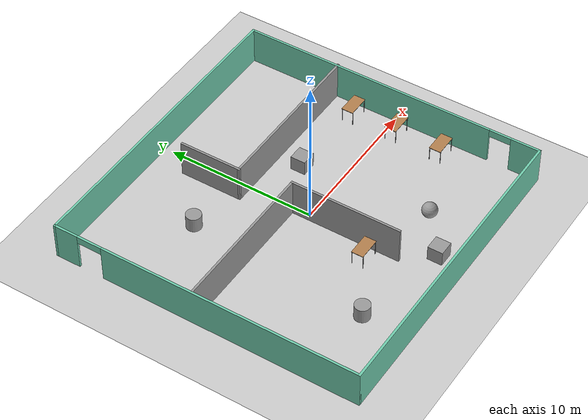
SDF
<sdf version="1.7">
 <world name="default">
  <light name="sun" type="directional">
   <pose>0 0 10 0 -0 0</pose>
   <diffuse>0.8 0.8 0.8 1</diffuse>
   <specular>0.2 0.2 0.2 1</specular>
   <attenuation>
    <range>1000</range>
    <constant>0.9</constant>
    <linear>0.01</linear>
    <quadratic>0.001</quadratic>
   </attenuation>
   <direction>-0.5 0.1 -0.9</direction>
   <spot><inner_angle>0</inner_angle><outer_angle>0</outer_angle><falloff>0</falloff></spot>
  </light>
  <model name="ground_plane">
   <static>1</static>
   <link name="link">
    <collision name="collision">
     <geometry><plane><normal>0 0 1</normal><size>100 100</size></plane></geometry>
     <surface>
      <contact><collide_bitmask>65535</collide_bitmask></contact>
      <friction><ode><mu>100</mu><mu2>50</mu2></ode></friction>
     </surface>
    </collision>
    <visual name="visual">
     <cast_shadows>0</cast_shadows>
     <geometry><plane><normal>0 0 1</normal><size>100 100</size></plane></geometry>
     <material>
      <script><uri>file://media/materials/scripts/gazebo.material</uri><name>Gazebo/Grey</name></script>
     </material>
    </visual>
   </link>
  </model>
  <gravity>0 0 -9.8</gravity>
  <magnetic_field>6e-06 2.3e-05 -4.2e-05</magnetic_field>
  <atmosphere type="adiabatic"/>
  <physics name="default_physics" default="0" type="ode">
   <max_step_size>0.001</max_step_size>
   <real_time_factor>1</real_time_factor>
   <real_time_update_rate>1000</real_time_update_rate>
  </physics>
  <scene><ambient>0.4 0.4 0.4 1</ambient><background>0.7 0.7 0.7 1</background><shadows>1</shadows></scene>
  <spherical_coordinates>
   <surface_model>EARTH_WGS84</surface_model>
   <latitude_deg>0</latitude_deg>
   <longitude_deg>0</longitude_deg>
   <elevation>0</elevation>
   <heading_deg>0</heading_deg>
  </spherical_coordinates>
  <model name="arche">
   <pose>-0.34998 0.3217 0 0 -0 0</pose>
   <link name="Wall_10">
    <collision name="Wall_10_Collision">
     <geometry><box><size>20.75 0.15 2.5</size></box></geometry>
     <pose>0 0 1.25 0 -0 0</pose>
    </collision>
    <visual name="Wall_10_Visual">
     <pose>0 0 1.25 0 -0 0</pose>
     <geometry><box><size>20.75 0.15 2.5</size></box></geometry>
     <material>
      <script><uri>file://media/materials/scripts/gazebo.material</uri><name>Gazebo/Grey</name></script>
      <ambient>0.435294 0.796078 0.67451 1</ambient>
     </material>
     <meta><layer>0</layer></meta>
    </visual>
    <pose>-0.031433 10.3 0 0 -0 3.14159</pose>
   </link>
   <link name="Wall_12">
    <collision name="Wall_12_Collision">
     <geometry><box><size>10.5 0.15 2.5</size></box></geometry>
     <pose>0 0 1.25 0 -0 0</pose>
    </collision>
    <visual name="Wall_12_Visual">
     <pose>0 0 1.25 0 -0 0</pose>
     <geometry><box><size>10.5 0.15 2.5</size></box></geometry>
     <material>
      <script><uri>file://media/materials/scripts/gazebo.material</uri><name>Gazebo/Grey</name></script>
      <ambient>1 1 1 1</ambient>
     </material>
     <meta><layer>0</layer></meta>
    </visual>
    <pose>-5.15018 0.721663 0 0 -0 0</pose>
   </link>
   <link name="Wall_13">
    <collision name="Wall_13_Collision">
     <geometry><box><size>7.5 0.15 2.5</size></box></geometry>
     <pose>0 0 1.25 0 -0 0</pose>
    </collision>
    <visual name="Wall_13_Visual">
     <pose>0 0 1.25 0 -0 0</pose>
     <geometry><box><size>7.5 0.15 2.5</size></box></geometry>
     <material>
      <script><uri>file://media/materials/scripts/gazebo.material</uri><name>Gazebo/Grey</name></script>
      <ambient>1 1 1 1</ambient>
     </material>
     <meta><layer>0</layer></meta>
    </visual>
    <pose>0.024817 -2.95334 0 0 -0 -1.5708</pose>
   </link>
   <link name="Wall_15">
    <collision name="Wall_15_Collision">
     <geometry><box><size>11.25 0.15 2.5</size></box></geometry>
     <pose>0 0 1.25 0 -0 0</pose>
    </collision>
    <visual name="Wall_15_Visual">
     <pose>0 0 1.25 0 -0 0</pose>
     <geometry><box><size>11.25 0.15 2.5</size></box></geometry>
     <material>
      <script><uri>file://media/materials/scripts/gazebo.material</uri><name>Gazebo/Grey</name></script>
      <ambient>1 1 1 1</ambient>
     </material>
     <meta><layer>0</layer></meta>
    </visual>
    <pose>4.78144 3.97834 0 0 -0 3.14159</pose>
   </link>
   <link name="Wall_16">
    <collision name="Wall_16_Collision">
     <geometry><box><size>4.25 0.15 2.5</size></box></geometry>
     <pose>0 0 1.25 0 -0 0</pose>
    </collision>
    <visual name="Wall_16_Visual">
     <pose>0 0 1.25 0 -0 0</pose>
     <geometry><box><size>4.25 0.15 2.5</size></box></geometry>
     <material>
      <script><uri>file://media/materials/scripts/gazebo.material</uri><name>Gazebo/Grey</name></script>
      <ambient>1 1 1 1</ambient>
     </material>
     <meta><layer>0</layer></meta>
    </visual>
    <pose>-0.768565 6.02834 0 0 -0 1.5708</pose>
   </link>
   <link name="Wall_7">
    <pose>-10.3314 0 0 0 -0 -1.5708</pose>
    <visual name="Wall_7_Visual_0">
     <pose>-9.52533 0 1.25 0 -0 0</pose>
     <geometry><box><size>1.69935 0.15 2.5</size></box></geometry>
     <material>
      <script><uri>file://media/materials/scripts/gazebo.material</uri><name>Gazebo/Grey</name></script>
      <ambient>0.435294 0.796078 0.67451 1</ambient>
     </material>
     <meta><layer>0</layer></meta>
    </visual>
    <collision name="Wall_7_Collision_0">
     <geometry><box><size>1.69935 0.15 2.5</size></box></geometry>
     <pose>-9.52533 0 1.25 0 -0 0</pose>
    </collision>
    <visual name="Wall_7_Visual_1">
     <pose>1.6932 0 1.25 0 -0 0</pose>
     <geometry><box><size>17.3636 0.15 2.5</size></box></geometry>
     <material>
      <script><uri>file://media/materials/scripts/gazebo.material</uri><name>Gazebo/Grey</name></script>
      <ambient>0.435294 0.796078 0.67451 1</ambient>
     </material>
     <meta><layer>0</layer></meta>
    </visual>
    <collision name="Wall_7_Collision_1">
     <geometry><box><size>17.3636 0.15 2.5</size></box></geometry>
     <pose>1.6932 0 1.25 0 -0 0</pose>
    </collision>
    <visual name="Wall_7_Visual_2">
     <pose>-7.83212 0 2.25 0 -0 0</pose>
     <geometry><box><size>1.68705 0.15 0.5</size></box></geometry>
     <material>
      <script><uri>file://media/materials/scripts/gazebo.material</uri><name>Gazebo/Grey</name></script>
      <ambient>0.435294 0.796078 0.67451 1</ambient>
     </material>
     <meta><layer>0</layer></meta>
    </visual>
    <collision name="Wall_7_Collision_2">
     <geometry><box><size>1.68705 0.15 0.5</size></box></geometry>
     <pose>-7.83212 0 2.25 0 -0 0</pose>
    </collision>
   </link>
   <link name="Wall_8">
    <collision name="Wall_8_Collision">
     <geometry><box><size>20.75 0.15 2.5</size></box></geometry>
     <pose>0 0 1.25 0 -0 0</pose>
    </collision>
    <visual name="Wall_8_Visual">
     <pose>0 0 1.25 0 -0 0</pose>
     <geometry><box><size>20.75 0.15 2.5</size></box></geometry>
     <material>
      <script><uri>file://media/materials/scripts/gazebo.material</uri><name>Gazebo/Grey</name></script>
      <ambient>0.435294 0.796078 0.67451 1</ambient>
     </material>
     <meta><layer>0</layer></meta>
    </visual>
    <pose>-0.031433 -10.3 0 0 -0 0</pose>
   </link>
   <link name="Wall_9">
    <pose>10.2686 0 0 0 -0 1.5708</pose>
    <visual name="Wall_9_Visual_0">
     <pose>-9.37108 0 1.25 0 -0 0</pose>
     <geometry><box><size>2.00783 0.15 2.5</size></box></geometry>
     <material>
      <script><uri>file://media/materials/scripts/gazebo.material</uri><name>Gazebo/Grey</name></script>
      <ambient>0.435294 0.796078 0.67451 1</ambient>
     </material>
     <meta><layer>0</layer></meta>
    </visual>
    <collision name="Wall_9_Collision_0">
     <geometry><box><size>2.00783 0.15 2.5</size></box></geometry>
     <pose>-9.37108 0 1.25 0 -0 0</pose>
    </collision>
    <visual name="Wall_9_Visual_1">
     <pose>1.7425 0 1.25 0 -0 0</pose>
     <geometry><box><size>17.265 0.15 2.5</size></box></geometry>
     <material>
      <script><uri>file://media/materials/scripts/gazebo.material</uri><name>Gazebo/Grey</name></script>
      <ambient>0.435294 0.796078 0.67451 1</ambient>
     </material>
     <meta><layer>0</layer></meta>
    </visual>
    <collision name="Wall_9_Collision_1">
     <geometry><box><size>17.265 0.15 2.5</size></box></geometry>
     <pose>1.7425 0 1.25 0 -0 0</pose>
    </collision>
    <visual name="Wall_9_Visual_2">
     <pose>-7.62858 0 2.25 0 -0 0</pose>
     <geometry><box><size>1.47717 0.15 0.5</size></box></geometry>
     <material>
      <script><uri>file://media/materials/scripts/gazebo.material</uri><name>Gazebo/Grey</name></script>
      <ambient>0.435294 0.796078 0.67451 1</ambient>
     </material>
     <meta><layer>0</layer></meta>
    </visual>
    <collision name="Wall_9_Collision_2">
     <geometry><box><size>1.47717 0.15 0.5</size></box></geometry>
     <pose>-7.62858 0 2.25 0 -0 0</pose>
    </collision>
   </link>
   <static>1</static>
  </model>
  <model name="table">
   <static>1</static>
   <link name="link">
    <collision name="surface">
     <pose>0 0 1 0 -0 0</pose>
     <geometry><box><size>1.5 0.8 0.03</size></box></geometry>
     <surface><friction><ode><mu>0.6</mu><mu2>0.6</mu2></ode></friction></surface>
    </collision>
    <visual name="visual1">
     <pose>0 0 1 0 -0 0</pose>
     <geometry><box><size>1.5 0.8 0.03</size></box></geometry>
     <material>
      <script><uri>file://media/materials/scripts/gazebo.material</uri><name>Gazebo/Wood</name></script>
     </material>
    </visual>
    <collision name="front_left_leg">
     <pose>0.68 0.38 0.5 0 -0 0</pose>
     <geometry><cylinder><radius>0.02</radius><length>1</length></cylinder></geometry>
    </collision>
    <visual name="front_left_leg">
     <pose>0.68 0.38 0.5 0 -0 0</pose>
     <geometry><cylinder><radius>0.02</radius><length>1</length></cylinder></geometry>
     <material>
      <script><uri>file://media/materials/scripts/gazebo.material</uri><name>Gazebo/Grey</name></script>
     </material>
    </visual>
    <collision name="front_right_leg">
     <pose>0.68 -0.38 0.5 0 -0 0</pose>
     <geometry><cylinder><radius>0.02</radius><length>1</length></cylinder></geometry>
    </collision>
    <visual name="front_right_leg">
     <pose>0.68 -0.38 0.5 0 -0 0</pose>
     <geometry><cylinder><radius>0.02</radius><length>1</length></cylinder></geometry>
     <material>
      <script><uri>file://media/materials/scripts/gazebo.material</uri><name>Gazebo/Grey</name></script>
     </material>
    </visual>
    <collision name="back_right_leg">
     <pose>-0.68 -0.38 0.5 0 -0 0</pose>
     <geometry><cylinder><radius>0.02</radius><length>1</length></cylinder></geometry>
    </collision>
    <visual name="back_right_leg">
     <pose>-0.68 -0.38 0.5 0 -0 0</pose>
     <geometry><cylinder><radius>0.02</radius><length>1</length></cylinder></geometry>
     <material>
      <script><uri>file://media/materials/scripts/gazebo.material</uri><name>Gazebo/Grey</name></script>
     </material>
    </visual>
    <collision name="back_left_leg">
     <pose>-0.68 0.38 0.5 0 -0 0</pose>
     <geometry><cylinder><radius>0.02</radius><length>1</length></cylinder></geometry>
    </collision>
    <visual name="back_left_leg">
     <pose>-0.68 0.38 0.5 0 -0 0</pose>
     <geometry><cylinder><radius>0.02</radius><length>1</length></cylinder></geometry>
     <material>
      <script><uri>file://media/materials/scripts/gazebo.material</uri><name>Gazebo/Grey</name></script>
     </material>
    </visual>
   </link>
   <pose>8.80186 -0.719955 0 0 -0 0</pose>
  </model>
  <model name="table_0">
   <static>1</static>
   <link name="link">
    <collision name="surface">
     <pose>0 0 1 0 -0 0</pose>
     <geometry><box><size>1.5 0.8 0.03</size></box></geometry>
     <surface><friction><ode><mu>0.6</mu><mu2>0.6</mu2></ode></friction></surface>
    </collision>
    <visual name="visual1">
     <pose>0 0 1 0 -0 0</pose>
     <geometry><box><size>1.5 0.8 0.03</size></box></geometry>
     <material>
      <script><uri>file://media/materials/scripts/gazebo.material</uri><name>Gazebo/Wood</name></script>
     </material>
    </visual>
    <collision name="front_left_leg">
     <pose>0.68 0.38 0.5 0 -0 0</pose>
     <geometry><cylinder><radius>0.02</radius><length>1</length></cylinder></geometry>
    </collision>
    <visual name="front_left_leg">
     <pose>0.68 0.38 0.5 0 -0 0</pose>
     <geometry><cylinder><radius>0.02</radius><length>1</length></cylinder></geometry>
     <material>
      <script><uri>file://media/materials/scripts/gazebo.material</uri><name>Gazebo/Grey</name></script>
     </material>
    </visual>
    <collision name="front_right_leg">
     <pose>0.68 -0.38 0.5 0 -0 0</pose>
     <geometry><cylinder><radius>0.02</radius><length>1</length></cylinder></geometry>
    </collision>
    <visual name="front_right_leg">
     <pose>0.68 -0.38 0.5 0 -0 0</pose>
     <geometry><cylinder><radius>0.02</radius><length>1</length></cylinder></geometry>
     <material>
      <script><uri>file://media/materials/scripts/gazebo.material</uri><name>Gazebo/Grey</name></script>
     </material>
    </visual>
    <collision name="back_right_leg">
     <pose>-0.68 -0.38 0.5 0 -0 0</pose>
     <geometry><cylinder><radius>0.02</radius><length>1</length></cylinder></geometry>
    </collision>
    <visual name="back_right_leg">
     <pose>-0.68 -0.38 0.5 0 -0 0</pose>
     <geometry><cylinder><radius>0.02</radius><length>1</length></cylinder></geometry>
     <material>
      <script><uri>file://media/materials/scripts/gazebo.material</uri><name>Gazebo/Grey</name></script>
     </material>
    </visual>
    <collision name="back_left_leg">
     <pose>-0.68 0.38 0.5 0 -0 0</pose>
     <geometry><cylinder><radius>0.02</radius><length>1</length></cylinder></geometry>
    </collision>
    <visual name="back_left_leg">
     <pose>-0.68 0.38 0.5 0 -0 0</pose>
     <geometry><cylinder><radius>0.02</radius><length>1</length></cylinder></geometry>
     <material>
      <script><uri>file://media/materials/scripts/gazebo.material</uri><name>Gazebo/Grey</name></script>
     </material>
    </visual>
   </link>
   <pose>8.70002 -3.94769 0 0 -0 0</pose>
  </model>
  <model name="unit_box">
   <pose>3.21813 2.62513 0.499995 1e-05 -0 0</pose>
   <link name="link">
    <inertial>
     <mass>1</mass>
     <inertia>
      <ixx>0.166667</ixx>
      <ixy>0</ixy>
      <ixz>0</ixz>
      <iyy>0.166667</iyy>
      <iyz>0</iyz>
      <izz>0.166667</izz>
     </inertia>
    </inertial>
    <collision name="collision"><geometry><box><size>1 1 1</size></box></geometry></collision>
    <visual name="visual">
     <geometry><box><size>1 1 1</size></box></geometry>
     <material>
      <script><name>Gazebo/Grey</name><uri>file://media/materials/scripts/gazebo.material</uri></script>
     </material>
    </visual>
   </link>
  </model>
  <model name="unit_cylinder">
   <pose>-4.47132 5.30134 0.499996 3e-06 3e-06 0</pose>
   <link name="link">
    <inertial>
     <mass>1</mass>
     <inertia><ixx>0.145833</ixx><ixy>0</ixy><ixz>0</ixz><iyy>0.145833</iyy><iyz>0</iyz><izz>0.125</izz></inertia>
    </inertial>
    <collision name="collision">
     <geometry><cylinder><radius>0.5</radius><length>1</length></cylinder></geometry>
    </collision>
    <visual name="visual">
     <geometry><cylinder><radius>0.5</radius><length>1</length></cylinder></geometry>
     <material>
      <script><name>Gazebo/Grey</name><uri>file://media/materials/scripts/gazebo.material</uri></script>
     </material>
    </visual>
   </link>
  </model>
  <model name="unit_sphere">
   <pose>3.81129 -6.01849 0.5 0 -0 0</pose>
   <link name="link">
    <inertial>
     <mass>1</mass>
     <inertia><ixx>0.1</ixx><ixy>0</ixy><ixz>0</ixz><iyy>0.1</iyy><iyz>0</iyz><izz>0.1</izz></inertia>
    </inertial>
    <collision name="collision"><geometry><sphere><radius>0.5</radius></sphere></geometry></collision>
    <visual name="visual">
     <geometry><sphere><radius>0.5</radius></sphere></geometry>
     <material>
      <script><name>Gazebo/Grey</name><uri>file://media/materials/scripts/gazebo.material</uri></script>
     </material>
    </visual>
   </link>
  </model>
  <model name="unit_box_0">
   <pose>1.19403 -8.15228 0.499995 0 -1e-05 0</pose>
   <link name="link">
    <inertial>
     <mass>1</mass>
     <inertia>
      <ixx>0.166667</ixx>
      <ixy>0</ixy>
      <ixz>0</ixz>
      <iyy>0.166667</iyy>
      <iyz>0</iyz>
      <izz>0.166667</izz>
     </inertia>
    </inertial>
    <collision name="collision"><geometry><box><size>1 1 1</size></box></geometry></collision>
    <visual name="visual">
     <geometry><box><size>1 1 1</size></box></geometry>
     <material>
      <script><name>Gazebo/Grey</name><uri>file://media/materials/scripts/gazebo.material</uri></script>
     </material>
    </visual>
   </link>
  </model>
  <model name="unit_cylinder_0">
   <pose>-5.16197 -6.80527 0.499992 -3e-06 2e-06 0</pose>
   <link name="link">
    <inertial>
     <mass>1</mass>
     <inertia><ixx>0.145833</ixx><ixy>0</ixy><ixz>0</ixz><iyy>0.145833</iyy><iyz>0</iyz><izz>0.125</izz></inertia>
    </inertial>
    <collision name="collision">
     <geometry><cylinder><radius>0.5</radius><length>1</length></cylinder></geometry>
    </collision>
    <visual name="visual">
     <geometry><cylinder><radius>0.5</radius><length>1</length></cylinder></geometry>
     <material>
      <script><name>Gazebo/Grey</name><uri>file://media/materials/scripts/gazebo.material</uri></script>
     </material>
    </visual>
   </link>
  </model>
  <plugin name="collision_map_creator" filename="libcollision_map_creator.so"/>
  <model name="table_1">
   <static>1</static>
   <link name="link">
    <collision name="surface">
     <pose>0 0 1 0 -0 0</pose>
     <geometry><box><size>1.5 0.8 0.03</size></box></geometry>
     <surface><friction><ode><mu>0.6</mu><mu2>0.6</mu2></ode></friction></surface>
    </collision>
    <visual name="visual1">
     <pose>0 0 1 0 -0 0</pose>
     <geometry><box><size>1.5 0.8 0.03</size></box></geometry>
     <material>
      <script><uri>file://media/materials/scripts/gazebo.material</uri><name>Gazebo/Wood</name></script>
     </material>
    </visual>
    <collision name="front_left_leg">
     <pose>0.68 0.38 0.5 0 -0 0</pose>
     <geometry><cylinder><radius>0.02</radius><length>1</length></cylinder></geometry>
    </collision>
    <visual name="front_left_leg">
     <pose>0.68 0.38 0.5 0 -0 0</pose>
     <geometry><cylinder><radius>0.02</radius><length>1</length></cylinder></geometry>
     <material>
      <script><uri>file://media/materials/scripts/gazebo.material</uri><name>Gazebo/Grey</name></script>
     </material>
    </visual>
    <collision name="front_right_leg">
     <pose>0.68 -0.38 0.5 0 -0 0</pose>
     <geometry><cylinder><radius>0.02</radius><length>1</length></cylinder></geometry>
    </collision>
    <visual name="front_right_leg">
     <pose>0.68 -0.38 0.5 0 -0 0</pose>
     <geometry><cylinder><radius>0.02</radius><length>1</length></cylinder></geometry>
     <material>
      <script><uri>file://media/materials/scripts/gazebo.material</uri><name>Gazebo/Grey</name></script>
     </material>
    </visual>
    <collision name="back_right_leg">
     <pose>-0.68 -0.38 0.5 0 -0 0</pose>
     <geometry><cylinder><radius>0.02</radius><length>1</length></cylinder></geometry>
    </collision>
    <visual name="back_right_leg">
     <pose>-0.68 -0.38 0.5 0 -0 0</pose>
     <geometry><cylinder><radius>0.02</radius><length>1</length></cylinder></geometry>
     <material>
      <script><uri>file://media/materials/scripts/gazebo.material</uri><name>Gazebo/Grey</name></script>
     </material>
    </visual>
    <collision name="back_left_leg">
     <pose>-0.68 0.38 0.5 0 -0 0</pose>
     <geometry><cylinder><radius>0.02</radius><length>1</length></cylinder></geometry>
    </collision>
    <visual name="back_left_leg">
     <pose>-0.68 0.38 0.5 0 -0 0</pose>
     <geometry><cylinder><radius>0.02</radius><length>1</length></cylinder></geometry>
     <material>
      <script><uri>file://media/materials/scripts/gazebo.material</uri><name>Gazebo/Grey</name></script>
     </material>
    </visual>
   </link>
   <pose>8.80344 2.39736 0 0 -0 0</pose>
  </model>
  <model name="table_1_clone">
   <static>1</static>
   <link name="link">
    <collision name="surface">
     <pose>0 0 1 0 -0 0</pose>
     <geometry><box><size>1.5 0.8 0.03</size></box></geometry>
     <surface><friction><ode><mu>0.6</mu><mu2>0.6</mu2></ode></friction></surface>
    </collision>
    <visual name="visual1">
     <pose>0 0 1 0 -0 0</pose>
     <geometry><box><size>1.5 0.8 0.03</size></box></geometry>
     <material>
      <script><uri>file://media/materials/scripts/gazebo.material</uri><name>Gazebo/Wood</name></script>
     </material>
    </visual>
    <collision name="front_left_leg">
     <pose>0.68 0.38 0.5 0 -0 0</pose>
     <geometry><cylinder><radius>0.02</radius><length>1</length></cylinder></geometry>
    </collision>
    <visual name="front_left_leg">
     <pose>0.68 0.38 0.5 0 -0 0</pose>
     <geometry><cylinder><radius>0.02</radius><length>1</length></cylinder></geometry>
     <material>
      <script><uri>file://media/materials/scripts/gazebo.material</uri><name>Gazebo/Grey</name></script>
     </material>
    </visual>
    <collision name="front_right_leg">
     <pose>0.68 -0.38 0.5 0 -0 0</pose>
     <geometry><cylinder><radius>0.02</radius><length>1</length></cylinder></geometry>
    </collision>
    <visual name="front_right_leg">
     <pose>0.68 -0.38 0.5 0 -0 0</pose>
     <geometry><cylinder><radius>0.02</radius><length>1</length></cylinder></geometry>
     <material>
      <script><uri>file://media/materials/scripts/gazebo.material</uri><name>Gazebo/Grey</name></script>
     </material>
    </visual>
    <collision name="back_right_leg">
     <pose>-0.68 -0.38 0.5 0 -0 0</pose>
     <geometry><cylinder><radius>0.02</radius><length>1</length></cylinder></geometry>
    </collision>
    <visual name="back_right_leg">
     <pose>-0.68 -0.38 0.5 0 -0 0</pose>
     <geometry><cylinder><radius>0.02</radius><length>1</length></cylinder></geometry>
     <material>
      <script><uri>file://media/materials/scripts/gazebo.material</uri><name>Gazebo/Grey</name></script>
     </material>
    </visual>
    <collision name="back_left_leg">
     <pose>-0.68 0.38 0.5 0 -0 0</pose>
     <geometry><cylinder><radius>0.02</radius><length>1</length></cylinder></geometry>
    </collision>
    <visual name="back_left_leg">
     <pose>-0.68 0.38 0.5 0 -0 0</pose>
     <geometry><cylinder><radius>0.02</radius><length>1</length></cylinder></geometry>
     <material>
      <script><uri>file://media/materials/scripts/gazebo.material</uri><name>Gazebo/Grey</name></script>
     </material>
    </visual>
   </link>
   <pose>-1.28684 -4.5265 0 0 -0 0</pose>
  </model>
 </world>
</sdf>
